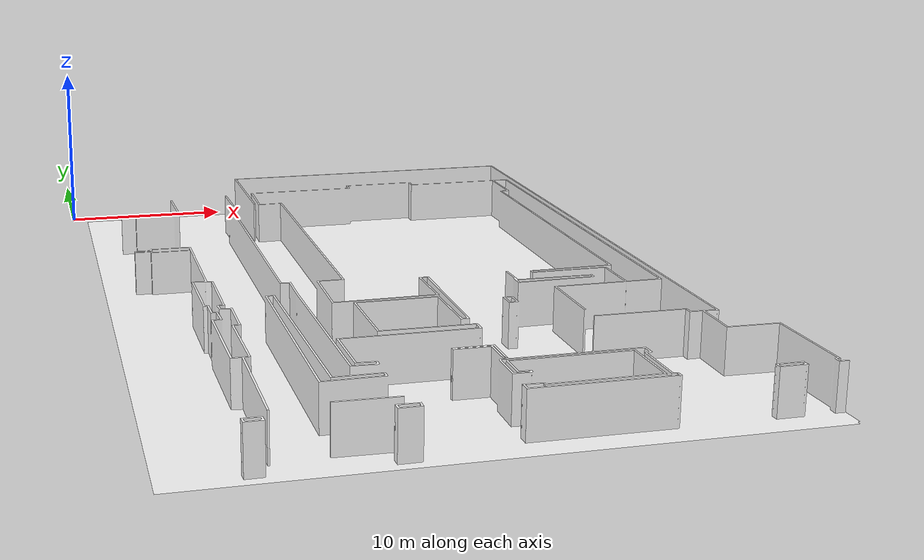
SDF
<?xml version='1.0' encoding='utf-8'?>
<sdf version="1.7">
  <model name="class_L1">
    <static>true</static>
    <link name="floor_1">
      <visual name="visual">
        <geometry>
          <mesh>
            <uri>model://class_L1/meshes/floor_1.obj</uri>
          </mesh>
        </geometry>
        <material>
          <diffuse>1.0 1.0 1.0</diffuse>
          <specular>0.1 0.1 0.1</specular>
          <pbr>
            <metal>
              <metalness>0.0</metalness>
              <albedo_map>model://class_L1/meshes/blue_linoleum.png</albedo_map>
            </metal>
          </pbr>
          <script>
            <uri>model://class_L1/meshes/</uri>
            <name>floor_1_Diffuse</name>
          </script>
        </material>
      </visual>
      <collision name="collision">
        <geometry>
          <mesh>
            <uri>model://class_L1/meshes/floor_1.obj</uri>
          </mesh>
        </geometry>
        <surface>
          <contact>
            <collide_bitmask>0x01</collide_bitmask>
          </contact>
        </surface>
      </collision>
    </link>
    <link name="wall_1">
      <visual name="wall_1">
        <geometry>
          <mesh>
            <uri>model://class_L1/meshes/wall_1.obj</uri>
          </mesh>
        </geometry>
        <transparency>0.0</transparency>
        <material>
          <diffuse>1.0 1.0 1.0</diffuse>
          <specular>0.1 0.1 0.1</specular>
          <pbr>
            <metal>
              <metalness>0.0</metalness>
              <albedo_map>model://class_L1/meshes/default.png</albedo_map>
            </metal>
          </pbr>
          <script>
            <uri>model://class_L1/meshes/</uri>
            <name>wall_1_Diffuse</name>
          </script>
        </material>
      </visual>
      <collision name="collision">
        <geometry>
          <mesh>
            <uri>model://class_L1/meshes/wall_1.obj</uri>
          </mesh>
        </geometry>
        <surface>
          <contact>
            <collide_bitmask>0x01</collide_bitmask>
          </contact>
        </surface>
      </collision>
      <pose>2.5237939662510755 -45.40663354858925 0 0 0 0</pose>
    </link>
  </model>
</sdf>
